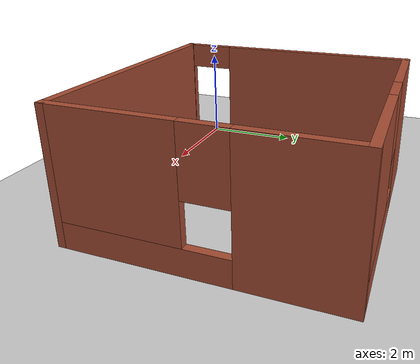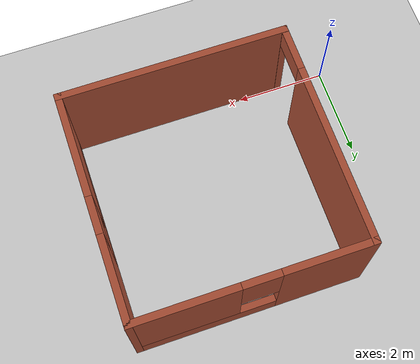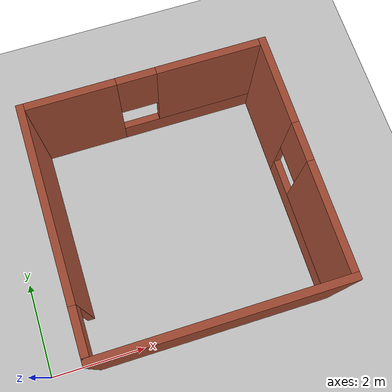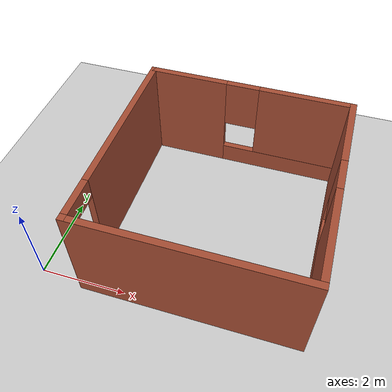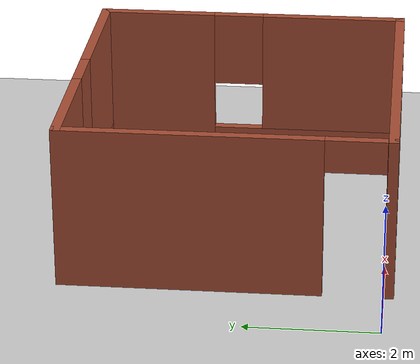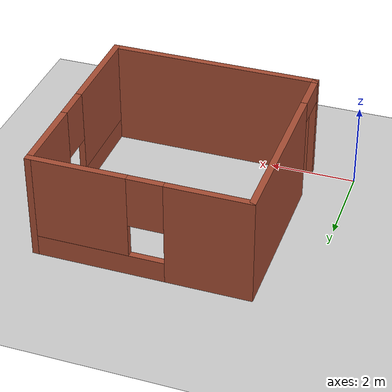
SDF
<sdf version="1.7">
 <world name="default">
  <light name="sun" type="directional">
   <pose>0 0 10 0 -0 0</pose>
   <diffuse>0.8 0.8 0.8 1</diffuse>
   <specular>0.2 0.2 0.2 1</specular>
   <attenuation>
    <range>1000</range>
    <constant>0.9</constant>
    <linear>0.01</linear>
    <quadratic>0.001</quadratic>
   </attenuation>
   <direction>-0.5 0.1 -0.9</direction>
   <spot><inner_angle>0</inner_angle><outer_angle>0</outer_angle><falloff>0</falloff></spot>
  </light>
  <model name="ground_plane">
   <static>1</static>
   <link name="link">
    <collision name="collision">
     <geometry><plane><normal>0 0 1</normal><size>100 100</size></plane></geometry>
     <surface>
      <contact><collide_bitmask>65535</collide_bitmask></contact>
      <friction><ode><mu>100</mu><mu2>50</mu2></ode></friction>
     </surface>
    </collision>
    <visual name="visual">
     <cast_shadows>0</cast_shadows>
     <geometry><plane><normal>0 0 1</normal><size>100 100</size></plane></geometry>
     <material>
      <script><uri>file://media/materials/scripts/gazebo.material</uri><name>Gazebo/Grey</name></script>
     </material>
    </visual>
   </link>
  </model>
  <gravity>0 0 -9.8</gravity>
  <magnetic_field>6e-06 2.3e-05 -4.2e-05</magnetic_field>
  <atmosphere type="adiabatic"/>
  <physics type="ode">
   <max_step_size>0.001</max_step_size>
   <real_time_factor>1</real_time_factor>
   <real_time_update_rate>1000</real_time_update_rate>
  </physics>
  <scene><ambient>0.4 0.4 0.4 1</ambient><background>0.7 0.7 0.7 1</background><shadows>1</shadows></scene>
  <spherical_coordinates>
   <surface_model>EARTH_WGS84</surface_model>
   <latitude_deg>0</latitude_deg>
   <longitude_deg>0</longitude_deg>
   <elevation>0</elevation>
   <heading_deg>0</heading_deg>
  </spherical_coordinates>
  <model name="Untitled">
   <pose>3.37948 2.3477 0 0 -0 0</pose>
   <link name="Wall_0">
    <collision name="Wall_0_Collision">
     <geometry><box><size>5 0.15 2.5</size></box></geometry>
     <pose>0 0 1.25 0 -0 0</pose>
    </collision>
    <visual name="Wall_0_Visual">
     <pose>0 0 1.25 0 -0 0</pose>
     <geometry><box><size>5 0.15 2.5</size></box></geometry>
     <material>
      <script><uri>file://media/materials/scripts/gazebo.material</uri><name>Gazebo/Bricks</name></script>
      <ambient>1 1 1 1</ambient>
     </material>
     <meta><layer>0</layer></meta>
    </visual>
    <pose>0.1325 -2.425 0 0 -0 0</pose>
   </link>
   <link name="Wall_2">
    <pose>-2.2925 0 0 0 -0 1.5708</pose>
    <visual name="Wall_2_Visual_0">
     <pose>-2.42186 0 1.25 0 -0 0</pose>
     <geometry><box><size>0.156276 0.15 2.5</size></box></geometry>
     <material>
      <script><uri>file://media/materials/scripts/gazebo.material</uri><name>Gazebo/Bricks</name></script>
      <ambient>1 1 1 1</ambient>
     </material>
     <meta><layer>0</layer></meta>
    </visual>
    <collision name="Wall_2_Collision_0">
     <geometry><box><size>0.156276 0.15 2.5</size></box></geometry>
     <pose>-2.42186 0 1.25 0 -0 0</pose>
    </collision>
    <visual name="Wall_2_Visual_1">
     <pose>0.528138 0 1.25 0 -0 0</pose>
     <geometry><box><size>3.94372 0.15 2.5</size></box></geometry>
     <material>
      <script><uri>file://media/materials/scripts/gazebo.material</uri><name>Gazebo/Bricks</name></script>
      <ambient>1 1 1 1</ambient>
     </material>
     <meta><layer>0</layer></meta>
    </visual>
    <collision name="Wall_2_Collision_1">
     <geometry><box><size>3.94372 0.15 2.5</size></box></geometry>
     <pose>0.528138 0 1.25 0 -0 0</pose>
    </collision>
    <visual name="Wall_2_Visual_2">
     <pose>-1.89372 0 2.25 0 -0 0</pose>
     <geometry><box><size>0.9 0.15 0.5</size></box></geometry>
     <material>
      <script><uri>file://media/materials/scripts/gazebo.material</uri><name>Gazebo/Bricks</name></script>
      <ambient>1 1 1 1</ambient>
     </material>
     <meta><layer>0</layer></meta>
    </visual>
    <collision name="Wall_2_Collision_2">
     <geometry><box><size>0.9 0.15 0.5</size></box></geometry>
     <pose>-1.89372 0 2.25 0 -0 0</pose>
    </collision>
   </link>
   <link name="Wall_4">
    <pose>0.1325 2.425 0 0 -0 0</pose>
    <visual name="Wall_4_Visual_0">
     <pose>-1.52717 0 1.25 0 -0 0</pose>
     <geometry><box><size>1.94566 0.15 2.5</size></box></geometry>
     <material>
      <script><uri>file://media/materials/scripts/gazebo.material</uri><name>Gazebo/Bricks</name></script>
      <ambient>1 1 1 1</ambient>
     </material>
     <meta><layer>0</layer></meta>
    </visual>
    <collision name="Wall_4_Collision_0">
     <geometry><box><size>1.94566 0.15 2.5</size></box></geometry>
     <pose>-1.52717 0 1.25 0 -0 0</pose>
    </collision>
    <visual name="Wall_4_Visual_1">
     <pose>0.97283 0 0.25 0 -0 0</pose>
     <geometry><box><size>3.05434 0.15 0.5</size></box></geometry>
     <material>
      <script><uri>file://media/materials/scripts/gazebo.material</uri><name>Gazebo/Bricks</name></script>
      <ambient>1 1 1 1</ambient>
     </material>
     <meta><layer>0</layer></meta>
    </visual>
    <collision name="Wall_4_Collision_1">
     <geometry><box><size>3.05434 0.15 0.5</size></box></geometry>
     <pose>0.97283 0 0.25 0 -0 0</pose>
    </collision>
    <visual name="Wall_4_Visual_2">
     <pose>1.37283 0 1.5 0 -0 0</pose>
     <geometry><box><size>2.25434 0.15 2</size></box></geometry>
     <material>
      <script><uri>file://media/materials/scripts/gazebo.material</uri><name>Gazebo/Bricks</name></script>
      <ambient>1 1 1 1</ambient>
     </material>
     <meta><layer>0</layer></meta>
    </visual>
    <collision name="Wall_4_Collision_2">
     <geometry><box><size>2.25434 0.15 2</size></box></geometry>
     <pose>1.37283 0 1.5 0 -0 0</pose>
    </collision>
    <visual name="Wall_4_Visual_3">
     <pose>-0.15434 0 1.9 0 -0 0</pose>
     <geometry><box><size>0.8 0.15 1.2</size></box></geometry>
     <material>
      <script><uri>file://media/materials/scripts/gazebo.material</uri><name>Gazebo/Bricks</name></script>
      <ambient>1 1 1 1</ambient>
     </material>
     <meta><layer>0</layer></meta>
    </visual>
    <collision name="Wall_4_Collision_3">
     <geometry><box><size>0.8 0.15 1.2</size></box></geometry>
     <pose>-0.15434 0 1.9 0 -0 0</pose>
    </collision>
   </link>
   <link name="Wall_5">
    <pose>2.5575 0 0 0 -0 -1.5708</pose>
    <visual name="Wall_5_Visual_0">
     <pose>-1.56015 0 1.25 0 -0 0</pose>
     <geometry><box><size>1.87971 0.15 2.5</size></box></geometry>
     <material>
      <script><uri>file://media/materials/scripts/gazebo.material</uri><name>Gazebo/Bricks</name></script>
      <ambient>1 1 1 1</ambient>
     </material>
     <meta><layer>0</layer></meta>
    </visual>
    <collision name="Wall_5_Collision_0">
     <geometry><box><size>1.87971 0.15 2.5</size></box></geometry>
     <pose>-1.56015 0 1.25 0 -0 0</pose>
    </collision>
    <visual name="Wall_5_Visual_1">
     <pose>0.939854 0 0.25 0 -0 0</pose>
     <geometry><box><size>3.12029 0.15 0.5</size></box></geometry>
     <material>
      <script><uri>file://media/materials/scripts/gazebo.material</uri><name>Gazebo/Bricks</name></script>
      <ambient>1 1 1 1</ambient>
     </material>
     <meta><layer>0</layer></meta>
    </visual>
    <collision name="Wall_5_Collision_1">
     <geometry><box><size>3.12029 0.15 0.5</size></box></geometry>
     <pose>0.939854 0 0.25 0 -0 0</pose>
    </collision>
    <visual name="Wall_5_Visual_2">
     <pose>1.33985 0 1.5 0 -0 0</pose>
     <geometry><box><size>2.32029 0.15 2</size></box></geometry>
     <material>
      <script><uri>file://media/materials/scripts/gazebo.material</uri><name>Gazebo/Bricks</name></script>
      <ambient>1 1 1 1</ambient>
     </material>
     <meta><layer>0</layer></meta>
    </visual>
    <collision name="Wall_5_Collision_2">
     <geometry><box><size>2.32029 0.15 2</size></box></geometry>
     <pose>1.33985 0 1.5 0 -0 0</pose>
    </collision>
    <visual name="Wall_5_Visual_3">
     <pose>-0.220292 0 1.9 0 -0 0</pose>
     <geometry><box><size>0.8 0.15 1.2</size></box></geometry>
     <material>
      <script><uri>file://media/materials/scripts/gazebo.material</uri><name>Gazebo/Bricks</name></script>
      <ambient>1 1 1 1</ambient>
     </material>
     <meta><layer>0</layer></meta>
    </visual>
    <collision name="Wall_5_Collision_3">
     <geometry><box><size>0.8 0.15 1.2</size></box></geometry>
     <pose>-0.220292 0 1.9 0 -0 0</pose>
    </collision>
   </link>
   <static>1</static>
  </model>
 </world>
</sdf>
